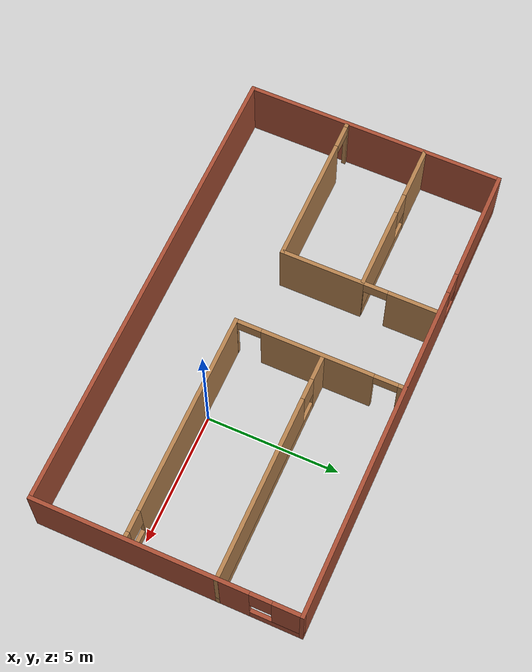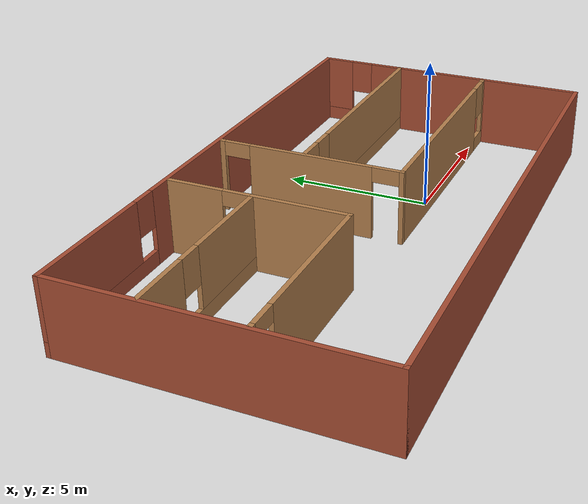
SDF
<?xml version='1.0'?>
<sdf version='1.7'>
  <model name='Office'>
    <pose>-3.06323 1.26182 0 0 -0 0</pose>
    <link name='Wall_0'>
      <collision name='Wall_0_Collision'>
        <geometry>
          <box>
            <size>10 0.15 2.5</size>
          </box>
        </geometry>
        <pose>0 0 1.25 0 -0 0</pose>
      </collision>
      <visual name='Wall_0_Visual'>
        <pose>0 0 1.25 0 -0 0</pose>
        <geometry>
          <box>
            <size>10 0.15 2.5</size>
          </box>
        </geometry>
        <material>
          <script>
            <uri>file://media/materials/scripts/gazebo.material</uri>
            <name>Gazebo/Bricks</name>
          </script>
          <ambient>1 1 1 1</ambient>
        </material>
        <meta>
          <layer>0</layer>
        </meta>
      </visual>
      <pose>-8.92776 0 0 0 -0 -1.5708</pose>
    </link>
    <link name='Wall_1'>
      <collision name='Wall_1_Collision'>
        <geometry>
          <box>
            <size>18 0.15 2.5</size>
          </box>
        </geometry>
        <pose>0 0 1.25 0 -0 0</pose>
      </collision>
      <visual name='Wall_1_Visual'>
        <pose>0 0 1.25 0 -0 0</pose>
        <geometry>
          <box>
            <size>18 0.15 2.5</size>
          </box>
        </geometry>
        <material>
          <script>
            <uri>file://media/materials/scripts/gazebo.material</uri>
            <name>Gazebo/Bricks</name>
          </script>
          <ambient>1 1 1 1</ambient>
        </material>
        <meta>
          <layer>0</layer>
        </meta>
      </visual>
      <pose>-0.00276 -4.925 0 0 -0 0</pose>
    </link>
    <link name='Wall_13'>
      <pose>-5.94848 2.02098 0 0 -0 0</pose>
      <visual name='Wall_13_Visual_0'>
        <pose>-1.97467 0 1.25 0 -0 0</pose>
        <geometry>
          <box>
            <size>2.05065 0.15 2.5</size>
          </box>
        </geometry>
        <material>
          <script>
            <uri>file://media/materials/scripts/gazebo.material</uri>
            <name>Gazebo/Wood</name>
          </script>
          <ambient>1 1 1 1</ambient>
        </material>
        <meta>
          <layer>0</layer>
        </meta>
      </visual>
      <collision name='Wall_13_Collision_0'>
        <geometry>
          <box>
            <size>2.05065 0.15 2.5</size>
          </box>
        </geometry>
        <pose>-1.97467 0 1.25 0 -0 0</pose>
      </collision>
      <visual name='Wall_13_Visual_1'>
        <pose>1.02533 0 0.25 0 -0 0</pose>
        <geometry>
          <box>
            <size>3.94935 0.15 0.5</size>
          </box>
        </geometry>
        <material>
          <script>
            <uri>file://media/materials/scripts/gazebo.material</uri>
            <name>Gazebo/Wood</name>
          </script>
          <ambient>1 1 1 1</ambient>
        </material>
        <meta>
          <layer>0</layer>
        </meta>
      </visual>
      <collision name='Wall_13_Collision_1'>
        <geometry>
          <box>
            <size>3.94935 0.15 0.5</size>
          </box>
        </geometry>
        <pose>1.02533 0 0.25 0 -0 0</pose>
      </collision>
      <visual name='Wall_13_Visual_2'>
        <pose>1.42532 0 1.5 0 -0 0</pose>
        <geometry>
          <box>
            <size>3.14935 0.15 2</size>
          </box>
        </geometry>
        <material>
          <script>
            <uri>file://media/materials/scripts/gazebo.material</uri>
            <name>Gazebo/Wood</name>
          </script>
          <ambient>1 1 1 1</ambient>
        </material>
        <meta>
          <layer>0</layer>
        </meta>
      </visual>
      <collision name='Wall_13_Collision_2'>
        <geometry>
          <box>
            <size>3.14935 0.15 2</size>
          </box>
        </geometry>
        <pose>1.42532 0 1.5 0 -0 0</pose>
      </collision>
      <visual name='Wall_13_Visual_3'>
        <pose>-0.54935 0 1.9 0 -0 0</pose>
        <geometry>
          <box>
            <size>0.8 0.15 1.2</size>
          </box>
        </geometry>
        <material>
          <script>
            <uri>file://media/materials/scripts/gazebo.material</uri>
            <name>Gazebo/Wood</name>
          </script>
          <ambient>1 1 1 1</ambient>
        </material>
        <meta>
          <layer>0</layer>
        </meta>
      </visual>
      <collision name='Wall_13_Collision_3'>
        <geometry>
          <box>
            <size>0.8 0.15 1.2</size>
          </box>
        </geometry>
        <pose>-0.54935 0 1.9 0 -0 0</pose>
      </collision>
    </link>
    <link name='Wall_15'>
      <pose>0.209953 1.73036 0 0 -0 -1.5708</pose>
      <visual name='Wall_15_Visual_0'>
        <pose>-3.09506 0 1.25 0 -0 0</pose>
        <geometry>
          <box>
            <size>0.309884 0.15 2.5</size>
          </box>
        </geometry>
        <material>
          <script>
            <uri>file://media/materials/scripts/gazebo.material</uri>
            <name>Gazebo/Wood</name>
          </script>
          <ambient>1 1 1 1</ambient>
        </material>
        <meta>
          <layer>0</layer>
        </meta>
      </visual>
      <collision name='Wall_15_Collision_0'>
        <geometry>
          <box>
            <size>0.309884 0.15 2.5</size>
          </box>
        </geometry>
        <pose>-3.09506 0 1.25 0 -0 0</pose>
      </collision>
      <visual name='Wall_15_Visual_1'>
        <pose>0.077159 0 1.25 0 -0 0</pose>
        <geometry>
          <box>
            <size>4.23455 0.15 2.5</size>
          </box>
        </geometry>
        <material>
          <script>
            <uri>file://media/materials/scripts/gazebo.material</uri>
            <name>Gazebo/Wood</name>
          </script>
          <ambient>1 1 1 1</ambient>
        </material>
        <meta>
          <layer>0</layer>
        </meta>
      </visual>
      <collision name='Wall_15_Collision_1'>
        <geometry>
          <box>
            <size>4.23455 0.15 2.5</size>
          </box>
        </geometry>
        <pose>0.077159 0 1.25 0 -0 0</pose>
      </collision>
      <visual name='Wall_15_Visual_2'>
        <pose>3.17222 0 1.25 0 -0 0</pose>
        <geometry>
          <box>
            <size>0.155567 0.15 2.5</size>
          </box>
        </geometry>
        <material>
          <script>
            <uri>file://media/materials/scripts/gazebo.material</uri>
            <name>Gazebo/Wood</name>
          </script>
          <ambient>1 1 1 1</ambient>
        </material>
        <meta>
          <layer>0</layer>
        </meta>
      </visual>
      <collision name='Wall_15_Collision_2'>
        <geometry>
          <box>
            <size>0.155567 0.15 2.5</size>
          </box>
        </geometry>
        <pose>3.17222 0 1.25 0 -0 0</pose>
      </collision>
      <visual name='Wall_15_Visual_3'>
        <pose>-2.49012 0 2.25 0 -0 0</pose>
        <geometry>
          <box>
            <size>0.9 0.15 0.5</size>
          </box>
        </geometry>
        <material>
          <script>
            <uri>file://media/materials/scripts/gazebo.material</uri>
            <name>Gazebo/Wood</name>
          </script>
          <ambient>1 1 1 1</ambient>
        </material>
        <meta>
          <layer>0</layer>
        </meta>
      </visual>
      <collision name='Wall_15_Collision_3'>
        <geometry>
          <box>
            <size>0.9 0.15 0.5</size>
          </box>
        </geometry>
        <pose>-2.49012 0 2.25 0 -0 0</pose>
      </collision>
      <visual name='Wall_15_Visual_4'>
        <pose>2.64443 0 2.25 0 -0 0</pose>
        <geometry>
          <box>
            <size>0.9 0.15 0.5</size>
          </box>
        </geometry>
        <material>
          <script>
            <uri>file://media/materials/scripts/gazebo.material</uri>
            <name>Gazebo/Wood</name>
          </script>
          <ambient>1 1 1 1</ambient>
        </material>
        <meta>
          <layer>0</layer>
        </meta>
      </visual>
      <collision name='Wall_15_Collision_4'>
        <geometry>
          <box>
            <size>0.9 0.15 0.5</size>
          </box>
        </geometry>
        <pose>2.64443 0 2.25 0 -0 0</pose>
      </collision>
    </link>
    <link name='Wall_16'>
      <pose>4.50995 -1.44464 0 0 -0 0</pose>
      <visual name='Wall_16_Visual_0'>
        <pose>-0.509038 0 1.25 0 -0 0</pose>
        <geometry>
          <box>
            <size>7.73192 0.15 2.5</size>
          </box>
        </geometry>
        <material>
          <script>
            <uri>file://media/materials/scripts/gazebo.material</uri>
            <name>Gazebo/Wood</name>
          </script>
          <ambient>1 1 1 1</ambient>
        </material>
        <meta>
          <layer>0</layer>
        </meta>
      </visual>
      <collision name='Wall_16_Collision_0'>
        <geometry>
          <box>
            <size>7.73192 0.15 2.5</size>
          </box>
        </geometry>
        <pose>-0.509038 0 1.25 0 -0 0</pose>
      </collision>
      <visual name='Wall_16_Visual_1'>
        <pose>3.86596 0 0.25 0 -0 0</pose>
        <geometry>
          <box>
            <size>1.01808 0.15 0.5</size>
          </box>
        </geometry>
        <material>
          <script>
            <uri>file://media/materials/scripts/gazebo.material</uri>
            <name>Gazebo/Wood</name>
          </script>
          <ambient>1 1 1 1</ambient>
        </material>
        <meta>
          <layer>0</layer>
        </meta>
      </visual>
      <collision name='Wall_16_Collision_1'>
        <geometry>
          <box>
            <size>1.01808 0.15 0.5</size>
          </box>
        </geometry>
        <pose>3.86596 0 0.25 0 -0 0</pose>
      </collision>
      <visual name='Wall_16_Visual_2'>
        <pose>4.26596 0 1.5 0 -0 0</pose>
        <geometry>
          <box>
            <size>0.218076 0.15 2</size>
          </box>
        </geometry>
        <material>
          <script>
            <uri>file://media/materials/scripts/gazebo.material</uri>
            <name>Gazebo/Wood</name>
          </script>
          <ambient>1 1 1 1</ambient>
        </material>
        <meta>
          <layer>0</layer>
        </meta>
      </visual>
      <collision name='Wall_16_Collision_2'>
        <geometry>
          <box>
            <size>0.218076 0.15 2</size>
          </box>
        </geometry>
        <pose>4.26596 0 1.5 0 -0 0</pose>
      </collision>
      <visual name='Wall_16_Visual_3'>
        <pose>3.75692 0 1.9 0 -0 0</pose>
        <geometry>
          <box>
            <size>0.8 0.15 1.2</size>
          </box>
        </geometry>
        <material>
          <script>
            <uri>file://media/materials/scripts/gazebo.material</uri>
            <name>Gazebo/Wood</name>
          </script>
          <ambient>1 1 1 1</ambient>
        </material>
        <meta>
          <layer>0</layer>
        </meta>
      </visual>
      <collision name='Wall_16_Collision_3'>
        <geometry>
          <box>
            <size>0.8 0.15 1.2</size>
          </box>
        </geometry>
        <pose>3.75692 0 1.9 0 -0 0</pose>
      </collision>
    </link>
    <link name='Wall_18'>
      <pose>4.62776 1.87777 0 0 -0 0</pose>
      <visual name='Wall_18_Visual_0'>
        <pose>-3.90358 0 1.25 0 -0 0</pose>
        <geometry>
          <box>
            <size>0.942846 0.15 2.5</size>
          </box>
        </geometry>
        <material>
          <script>
            <uri>file://media/materials/scripts/gazebo.material</uri>
            <name>Gazebo/Wood</name>
          </script>
          <ambient>1 1 1 1</ambient>
        </material>
        <meta>
          <layer>0</layer>
        </meta>
      </visual>
      <collision name='Wall_18_Collision_0'>
        <geometry>
          <box>
            <size>0.942846 0.15 2.5</size>
          </box>
        </geometry>
        <pose>-3.90358 0 1.25 0 -0 0</pose>
      </collision>
      <visual name='Wall_18_Visual_1'>
        <pose>0.471423 0 0.25 0 -0 0</pose>
        <geometry>
          <box>
            <size>7.80715 0.15 0.5</size>
          </box>
        </geometry>
        <material>
          <script>
            <uri>file://media/materials/scripts/gazebo.material</uri>
            <name>Gazebo/Wood</name>
          </script>
          <ambient>1 1 1 1</ambient>
        </material>
        <meta>
          <layer>0</layer>
        </meta>
      </visual>
      <collision name='Wall_18_Collision_1'>
        <geometry>
          <box>
            <size>7.80715 0.15 0.5</size>
          </box>
        </geometry>
        <pose>0.471423 0 0.25 0 -0 0</pose>
      </collision>
      <visual name='Wall_18_Visual_2'>
        <pose>0.871423 0 1.5 0 -0 0</pose>
        <geometry>
          <box>
            <size>7.00715 0.15 2</size>
          </box>
        </geometry>
        <material>
          <script>
            <uri>file://media/materials/scripts/gazebo.material</uri>
            <name>Gazebo/Wood</name>
          </script>
          <ambient>1 1 1 1</ambient>
        </material>
        <meta>
          <layer>0</layer>
        </meta>
      </visual>
      <collision name='Wall_18_Collision_2'>
        <geometry>
          <box>
            <size>7.00715 0.15 2</size>
          </box>
        </geometry>
        <pose>0.871423 0 1.5 0 -0 0</pose>
      </collision>
      <visual name='Wall_18_Visual_3'>
        <pose>-3.03215 0 1.9 0 -0 0</pose>
        <geometry>
          <box>
            <size>0.8 0.15 1.2</size>
          </box>
        </geometry>
        <material>
          <script>
            <uri>file://media/materials/scripts/gazebo.material</uri>
            <name>Gazebo/Wood</name>
          </script>
          <ambient>1 1 1 1</ambient>
        </material>
        <meta>
          <layer>0</layer>
        </meta>
      </visual>
      <collision name='Wall_18_Collision_3'>
        <geometry>
          <box>
            <size>0.8 0.15 1.2</size>
          </box>
        </geometry>
        <pose>-3.03215 0 1.9 0 -0 0</pose>
      </collision>
    </link>
    <link name='Wall_2'>
      <pose>8.92224 0 0 0 -0 1.5708</pose>
      <visual name='Wall_2_Visual_0'>
        <pose>-0.976284 0 1.25 0 -0 0</pose>
        <geometry>
          <box>
            <size>8.04743 0.15 2.5</size>
          </box>
        </geometry>
        <material>
          <script>
            <uri>file://media/materials/scripts/gazebo.material</uri>
            <name>Gazebo/Bricks</name>
          </script>
          <ambient>1 1 1 1</ambient>
        </material>
        <meta>
          <layer>0</layer>
        </meta>
      </visual>
      <collision name='Wall_2_Collision_0'>
        <geometry>
          <box>
            <size>8.04743 0.15 2.5</size>
          </box>
        </geometry>
        <pose>-0.976284 0 1.25 0 -0 0</pose>
      </collision>
      <visual name='Wall_2_Visual_1'>
        <pose>4.02372 0 0.25 0 -0 0</pose>
        <geometry>
          <box>
            <size>1.95257 0.15 0.5</size>
          </box>
        </geometry>
        <material>
          <script>
            <uri>file://media/materials/scripts/gazebo.material</uri>
            <name>Gazebo/Bricks</name>
          </script>
          <ambient>1 1 1 1</ambient>
        </material>
        <meta>
          <layer>0</layer>
        </meta>
      </visual>
      <collision name='Wall_2_Collision_1'>
        <geometry>
          <box>
            <size>1.95257 0.15 0.5</size>
          </box>
        </geometry>
        <pose>4.02372 0 0.25 0 -0 0</pose>
      </collision>
      <visual name='Wall_2_Visual_2'>
        <pose>4.42372 0 1.5 0 -0 0</pose>
        <geometry>
          <box>
            <size>1.15257 0.15 2</size>
          </box>
        </geometry>
        <material>
          <script>
            <uri>file://media/materials/scripts/gazebo.material</uri>
            <name>Gazebo/Bricks</name>
          </script>
          <ambient>1 1 1 1</ambient>
        </material>
        <meta>
          <layer>0</layer>
        </meta>
      </visual>
      <collision name='Wall_2_Collision_2'>
        <geometry>
          <box>
            <size>1.15257 0.15 2</size>
          </box>
        </geometry>
        <pose>4.42372 0 1.5 0 -0 0</pose>
      </collision>
      <visual name='Wall_2_Visual_3'>
        <pose>3.44743 0 1.9 0 -0 0</pose>
        <geometry>
          <box>
            <size>0.8 0.15 1.2</size>
          </box>
        </geometry>
        <material>
          <script>
            <uri>file://media/materials/scripts/gazebo.material</uri>
            <name>Gazebo/Bricks</name>
          </script>
          <ambient>1 1 1 1</ambient>
        </material>
        <meta>
          <layer>0</layer>
        </meta>
      </visual>
      <collision name='Wall_2_Collision_3'>
        <geometry>
          <box>
            <size>0.8 0.15 1.2</size>
          </box>
        </geometry>
        <pose>3.44743 0 1.9 0 -0 0</pose>
      </collision>
    </link>
    <link name='Wall_3'>
      <pose>-0.00276 4.925 0 0 -0 3.14159</pose>
      <visual name='Wall_3_Visual_0'>
        <pose>-2.5902 0 1.25 0 -0 0</pose>
        <geometry>
          <box>
            <size>12.8196 0.15 2.5</size>
          </box>
        </geometry>
        <material>
          <script>
            <uri>file://media/materials/scripts/gazebo.material</uri>
            <name>Gazebo/Bricks</name>
          </script>
          <ambient>1 1 1 1</ambient>
        </material>
        <meta>
          <layer>0</layer>
        </meta>
      </visual>
      <collision name='Wall_3_Collision_0'>
        <geometry>
          <box>
            <size>12.8196 0.15 2.5</size>
          </box>
        </geometry>
        <pose>-2.5902 0 1.25 0 -0 0</pose>
      </collision>
      <visual name='Wall_3_Visual_1'>
        <pose>6.4098 0 0.25 0 -0 0</pose>
        <geometry>
          <box>
            <size>5.1804 0.15 0.5</size>
          </box>
        </geometry>
        <material>
          <script>
            <uri>file://media/materials/scripts/gazebo.material</uri>
            <name>Gazebo/Bricks</name>
          </script>
          <ambient>1 1 1 1</ambient>
        </material>
        <meta>
          <layer>0</layer>
        </meta>
      </visual>
      <collision name='Wall_3_Collision_1'>
        <geometry>
          <box>
            <size>5.1804 0.15 0.5</size>
          </box>
        </geometry>
        <pose>6.4098 0 0.25 0 -0 0</pose>
      </collision>
      <visual name='Wall_3_Visual_2'>
        <pose>6.8098 0 1.5 0 -0 0</pose>
        <geometry>
          <box>
            <size>4.3804 0.15 2</size>
          </box>
        </geometry>
        <material>
          <script>
            <uri>file://media/materials/scripts/gazebo.material</uri>
            <name>Gazebo/Bricks</name>
          </script>
          <ambient>1 1 1 1</ambient>
        </material>
        <meta>
          <layer>0</layer>
        </meta>
      </visual>
      <collision name='Wall_3_Collision_2'>
        <geometry>
          <box>
            <size>4.3804 0.15 2</size>
          </box>
        </geometry>
        <pose>6.8098 0 1.5 0 -0 0</pose>
      </collision>
      <visual name='Wall_3_Visual_3'>
        <pose>4.2196 0 1.9 0 -0 0</pose>
        <geometry>
          <box>
            <size>0.8 0.15 1.2</size>
          </box>
        </geometry>
        <material>
          <script>
            <uri>file://media/materials/scripts/gazebo.material</uri>
            <name>Gazebo/Bricks</name>
          </script>
          <ambient>1 1 1 1</ambient>
        </material>
        <meta>
          <layer>0</layer>
        </meta>
      </visual>
      <collision name='Wall_3_Collision_3'>
        <geometry>
          <box>
            <size>0.8 0.15 1.2</size>
          </box>
        </geometry>
        <pose>4.2196 0 1.9 0 -0 0</pose>
      </collision>
    </link>
    <link name='Wall_6'>
      <pose>-5.88349 -1.06388 0 0 -0 0</pose>
      <visual name='Wall_6_Visual_0'>
        <pose>-2.92568 0 1.25 0 -0 0</pose>
        <geometry>
          <box>
            <size>0.148638 0.15 2.5</size>
          </box>
        </geometry>
        <material>
          <script>
            <uri>file://media/materials/scripts/gazebo.material</uri>
            <name>Gazebo/Wood</name>
          </script>
          <ambient>1 1 1 1</ambient>
        </material>
        <meta>
          <layer>0</layer>
        </meta>
      </visual>
      <collision name='Wall_6_Collision_0'>
        <geometry>
          <box>
            <size>0.148638 0.15 2.5</size>
          </box>
        </geometry>
        <pose>-2.92568 0 1.25 0 -0 0</pose>
      </collision>
      <visual name='Wall_6_Visual_1'>
        <pose>0.524319 0 1.25 0 -0 0</pose>
        <geometry>
          <box>
            <size>4.95136 0.15 2.5</size>
          </box>
        </geometry>
        <material>
          <script>
            <uri>file://media/materials/scripts/gazebo.material</uri>
            <name>Gazebo/Wood</name>
          </script>
          <ambient>1 1 1 1</ambient>
        </material>
        <meta>
          <layer>0</layer>
        </meta>
      </visual>
      <collision name='Wall_6_Collision_1'>
        <geometry>
          <box>
            <size>4.95136 0.15 2.5</size>
          </box>
        </geometry>
        <pose>0.524319 0 1.25 0 -0 0</pose>
      </collision>
      <visual name='Wall_6_Visual_2'>
        <pose>-2.40136 0 2.25 0 -0 0</pose>
        <geometry>
          <box>
            <size>0.9 0.15 0.5</size>
          </box>
        </geometry>
        <material>
          <script>
            <uri>file://media/materials/scripts/gazebo.material</uri>
            <name>Gazebo/Wood</name>
          </script>
          <ambient>1 1 1 1</ambient>
        </material>
        <meta>
          <layer>0</layer>
        </meta>
      </visual>
      <collision name='Wall_6_Collision_2'>
        <geometry>
          <box>
            <size>0.9 0.15 0.5</size>
          </box>
        </geometry>
        <pose>-2.40136 0 2.25 0 -0 0</pose>
      </collision>
    </link>
    <link name='Wall_7'>
      <pose>-2.95849 1.86112 0 0 -0 1.5708</pose>
      <visual name='Wall_7_Visual_0'>
        <pose>-1.38691 0 1.25 0 -0 0</pose>
        <geometry>
          <box>
            <size>3.22617 0.15 2.5</size>
          </box>
        </geometry>
        <material>
          <script>
            <uri>file://media/materials/scripts/gazebo.material</uri>
            <name>Gazebo/Wood</name>
          </script>
          <ambient>1 1 1 1</ambient>
        </material>
        <meta>
          <layer>0</layer>
        </meta>
      </visual>
      <collision name='Wall_7_Collision_0'>
        <geometry>
          <box>
            <size>3.22617 0.15 2.5</size>
          </box>
        </geometry>
        <pose>-1.38691 0 1.25 0 -0 0</pose>
      </collision>
      <visual name='Wall_7_Visual_1'>
        <pose>2.06309 0 1.25 0 -0 0</pose>
        <geometry>
          <box>
            <size>1.87383 0.15 2.5</size>
          </box>
        </geometry>
        <material>
          <script>
            <uri>file://media/materials/scripts/gazebo.material</uri>
            <name>Gazebo/Wood</name>
          </script>
          <ambient>1 1 1 1</ambient>
        </material>
        <meta>
          <layer>0</layer>
        </meta>
      </visual>
      <collision name='Wall_7_Collision_1'>
        <geometry>
          <box>
            <size>1.87383 0.15 2.5</size>
          </box>
        </geometry>
        <pose>2.06309 0 1.25 0 -0 0</pose>
      </collision>
      <visual name='Wall_7_Visual_2'>
        <pose>0.676171 0 2.25 0 -0 0</pose>
        <geometry>
          <box>
            <size>0.9 0.15 0.5</size>
          </box>
        </geometry>
        <material>
          <script>
            <uri>file://media/materials/scripts/gazebo.material</uri>
            <name>Gazebo/Wood</name>
          </script>
          <ambient>1 1 1 1</ambient>
        </material>
        <meta>
          <layer>0</layer>
        </meta>
      </visual>
      <collision name='Wall_7_Collision_2'>
        <geometry>
          <box>
            <size>0.9 0.15 0.5</size>
          </box>
        </geometry>
        <pose>0.676171 0 2.25 0 -0 0</pose>
      </collision>
    </link>
    <static>1</static>
  </model>
</sdf>
